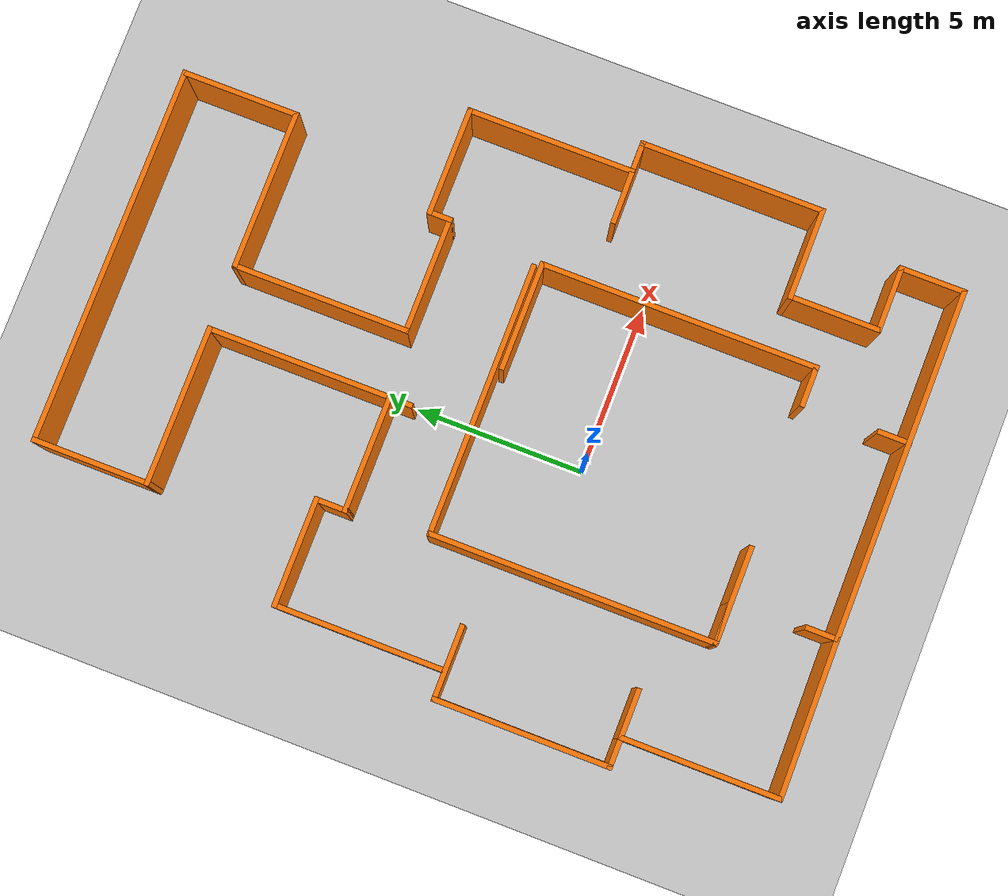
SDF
<sdf version="1.7">
 <world name="default">
  <light name="sun" type="directional">
   <pose>0 0 10 0 -0 0</pose>
   <diffuse>0.8 0.8 0.8 1</diffuse>
   <specular>0.2 0.2 0.2 1</specular>
   <attenuation>
    <range>1000</range>
    <constant>0.9</constant>
    <linear>0.01</linear>
    <quadratic>0.001</quadratic>
   </attenuation>
   <direction>-0.5 0.1 -0.9</direction>
   <spot><inner_angle>0</inner_angle><outer_angle>0</outer_angle><falloff>0</falloff></spot>
  </light>
  <model name="ground_plane">
   <static>1</static>
   <link name="link">
    <collision name="collision">
     <geometry><plane><normal>0 0 1</normal><size>100 100</size></plane></geometry>
     <surface>
      <contact><collide_bitmask>65535</collide_bitmask></contact>
      <friction><ode><mu>100</mu><mu2>50</mu2></ode></friction>
     </surface>
    </collision>
    <visual name="visual">
     <cast_shadows>0</cast_shadows>
     <geometry><plane><normal>0 0 1</normal><size>100 100</size></plane></geometry>
     <material>
      <script><uri>file://media/materials/scripts/gazebo.material</uri><name>Gazebo/Grey</name></script>
     </material>
    </visual>
   </link>
  </model>
  <gravity>0 0 -9.8</gravity>
  <magnetic_field>6e-06 2.3e-05 -4.2e-05</magnetic_field>
  <atmosphere type="adiabatic"/>
  <physics type="ode">
   <max_step_size>0.001</max_step_size>
   <real_time_factor>1</real_time_factor>
   <real_time_update_rate>1000</real_time_update_rate>
  </physics>
  <scene><ambient>0.4 0.4 0.4 1</ambient><background>0.7 0.7 0.7 1</background><shadows>1</shadows></scene>
  <spherical_coordinates>
   <surface_model>EARTH_WGS84</surface_model>
   <latitude_deg>0</latitude_deg>
   <longitude_deg>0</longitude_deg>
   <elevation>0</elevation>
   <heading_deg>0</heading_deg>
  </spherical_coordinates>
  <model name="Museum">
   <pose>0.74736 3.09404 0 0 -0 0</pose>
   <link name="Wall_0">
    <collision name="Wall_0_Collision">
     <geometry><box><size>4.74291 0.15 2.5</size></box></geometry>
     <pose>0 0 1.25 0 -0 0</pose>
    </collision>
    <visual name="Wall_0_Visual">
     <pose>0 0 1.25 0 -0 0</pose>
     <geometry><box><size>4.74291 0.15 2.5</size></box></geometry>
     <material>
      <script><uri>file://media/materials/scripts/gazebo.material</uri><name>Gazebo/Grey</name></script>
      <ambient>0.996078 0.47451 0.0196078 1</ambient>
     </material>
     <meta><layer>0</layer></meta>
    </visual>
    <pose>-5.09023 -11.2453 0 0 -0 0.008808</pose>
   </link>
   <link name="Wall_1">
    <collision name="Wall_1_Collision">
     <geometry><box><size>1 0.15 2.5</size></box></geometry>
     <pose>0 0 1.25 0 -0 0</pose>
    </collision>
    <visual name="Wall_1_Visual">
     <pose>0 0 1.25 0 -0 0</pose>
     <geometry><box><size>1 0.15 2.5</size></box></geometry>
     <material>
      <script><uri>file://media/materials/scripts/gazebo.material</uri><name>Gazebo/Grey</name></script>
      <ambient>0.996078 0.47451 0.0196078 1</ambient>
     </material>
     <meta><layer>0</layer></meta>
    </visual>
    <pose>-2.79386 -10.8 0 0 -0 1.5708</pose>
   </link>
   <link name="Wall_10">
    <collision name="Wall_10_Collision">
     <geometry><box><size>5 0.15 2.5</size></box></geometry>
     <pose>0 0 1.25 0 -0 0</pose>
    </collision>
    <visual name="Wall_10_Visual">
     <pose>0 0 1.25 0 -0 0</pose>
     <geometry><box><size>5 0.15 2.5</size></box></geometry>
     <material>
      <script><uri>file://media/materials/scripts/gazebo.material</uri><name>Gazebo/Grey</name></script>
      <ambient>0.996078 0.47451 0.0196078 1</ambient>
     </material>
     <meta><layer>0</layer></meta>
    </visual>
    <pose>-7.41414 0.991141 0 0 -0 1.5708</pose>
   </link>
   <link name="Wall_11">
    <collision name="Wall_11_Collision">
     <geometry><box><size>3.25 0.15 2.5</size></box></geometry>
     <pose>0 0 1.25 0 -0 0</pose>
    </collision>
    <visual name="Wall_11_Visual">
     <pose>0 0 1.25 0 -0 0</pose>
     <geometry><box><size>3.25 0.15 2.5</size></box></geometry>
     <material>
      <script><uri>file://media/materials/scripts/gazebo.material</uri><name>Gazebo/Grey</name></script>
      <ambient>0.996078 0.47451 0.0196078 1</ambient>
     </material>
     <meta><layer>0</layer></meta>
    </visual>
    <pose>-5.86414 3.41614 0 0 -0 0</pose>
   </link>
   <link name="Wall_12">
    <collision name="Wall_12_Collision">
     <geometry><box><size>1 0.15 2.5</size></box></geometry>
     <pose>0 0 1.25 0 -0 0</pose>
    </collision>
    <visual name="Wall_12_Visual">
     <pose>0 0 1.25 0 -0 0</pose>
     <geometry><box><size>1 0.15 2.5</size></box></geometry>
     <material>
      <script><uri>file://media/materials/scripts/gazebo.material</uri><name>Gazebo/Grey</name></script>
      <ambient>0.996078 0.47451 0.0196078 1</ambient>
     </material>
     <meta><layer>0</layer></meta>
    </visual>
    <pose>-4.31414 2.99114 0 0 -0 -1.5708</pose>
   </link>
   <link name="Wall_13">
    <collision name="Wall_13_Collision">
     <geometry><box><size>3.5 0.15 2.5</size></box></geometry>
     <pose>0 0 1.25 0 -0 0</pose>
    </collision>
    <visual name="Wall_13_Visual">
     <pose>0 0 1.25 0 -0 0</pose>
     <geometry><box><size>3.5 0.15 2.5</size></box></geometry>
     <material>
      <script><uri>file://media/materials/scripts/gazebo.material</uri><name>Gazebo/Grey</name></script>
      <ambient>0.996078 0.47451 0.0196078 1</ambient>
     </material>
     <meta><layer>0</layer></meta>
    </visual>
    <pose>-2.63914 2.56614 0 0 -0 0</pose>
   </link>
   <link name="Wall_14">
    <collision name="Wall_14_Collision">
     <geometry><box><size>0.75 0.15 2.5</size></box></geometry>
     <pose>0 0 1.25 0 -0 0</pose>
    </collision>
    <visual name="Wall_14_Visual">
     <pose>0 0 1.25 0 -0 0</pose>
     <geometry><box><size>0.75 0.15 2.5</size></box></geometry>
     <material>
      <script><uri>file://media/materials/scripts/gazebo.material</uri><name>Gazebo/Grey</name></script>
      <ambient>0.996078 0.47451 0.0196078 1</ambient>
     </material>
     <meta><layer>0</layer></meta>
    </visual>
    <pose>-0.964138 2.26614 0 0 -0 -1.5708</pose>
   </link>
   <link name="Wall_17">
    <collision name="Wall_17_Collision">
     <geometry><box><size>1.25 0.15 2.5</size></box></geometry>
     <pose>0 0 1.25 0 -0 0</pose>
    </collision>
    <visual name="Wall_17_Visual">
     <pose>0 0 1.25 0 -0 0</pose>
     <geometry><box><size>1.25 0.15 2.5</size></box></geometry>
     <material>
      <script><uri>file://media/materials/scripts/gazebo.material</uri><name>Gazebo/Grey</name></script>
      <ambient>0.996078 0.47451 0.0196078 1</ambient>
     </material>
     <meta><layer>0</layer></meta>
    </visual>
    <pose>-3.53014 -8.18025 0 0 -0 3.14159</pose>
   </link>
   <link name="Wall_18">
    <collision name="Wall_18_Collision">
     <geometry><box><size>8.5 0.15 2.5</size></box></geometry>
     <pose>0 0 1.25 0 -0 0</pose>
    </collision>
    <visual name="Wall_18_Visual">
     <pose>0 0 1.25 0 -0 0</pose>
     <geometry><box><size>8.5 0.15 2.5</size></box></geometry>
     <material>
      <script><uri>file://media/materials/scripts/gazebo.material</uri><name>Gazebo/Grey</name></script>
      <ambient>0.996078 0.47451 0.0196078 1</ambient>
     </material>
     <meta><layer>0</layer></meta>
    </visual>
    <pose>-4.08014 -4.00525 0 0 -0 1.5708</pose>
   </link>
   <link name="Wall_19">
    <collision name="Wall_19_Collision">
     <geometry><box><size>3.25 0.15 2.5</size></box></geometry>
     <pose>0 0 1.25 0 -0 0</pose>
    </collision>
    <visual name="Wall_19_Visual">
     <pose>0 0 1.25 0 -0 0</pose>
     <geometry><box><size>3.25 0.15 2.5</size></box></geometry>
     <material>
      <script><uri>file://media/materials/scripts/gazebo.material</uri><name>Gazebo/Grey</name></script>
      <ambient>0.996078 0.47451 0.0196078 1</ambient>
     </material>
     <meta><layer>0</layer></meta>
    </visual>
    <pose>-2.53014 0.169748 0 0 -0 0</pose>
   </link>
   <link name="Wall_21">
    <collision name="Wall_21_Collision">
     <geometry><box><size>5.5 0.15 2.5</size></box></geometry>
     <pose>0 0 1.25 0 -0 0</pose>
    </collision>
    <visual name="Wall_21_Visual">
     <pose>0 0 1.25 0 -0 0</pose>
     <geometry><box><size>5.5 0.15 2.5</size></box></geometry>
     <material>
      <script><uri>file://media/materials/scripts/gazebo.material</uri><name>Gazebo/Grey</name></script>
      <ambient>0.996078 0.47451 0.0196078 1</ambient>
     </material>
     <meta><layer>0</layer></meta>
    </visual>
    <pose>-0.964138 5.24114 0 0 -0 1.5708</pose>
   </link>
   <link name="Wall_22">
    <collision name="Wall_22_Collision">
     <geometry><box><size>4.75 0.15 2.5</size></box></geometry>
     <pose>0 0 1.25 0 -0 0</pose>
    </collision>
    <visual name="Wall_22_Visual">
     <pose>0 0 1.25 0 -0 0</pose>
     <geometry><box><size>4.75 0.15 2.5</size></box></geometry>
     <material>
      <script><uri>file://media/materials/scripts/gazebo.material</uri><name>Gazebo/Grey</name></script>
      <ambient>0.996078 0.47451 0.0196078 1</ambient>
     </material>
     <meta><layer>0</layer></meta>
    </visual>
    <pose>-3.26414 7.91614 0 0 -0 3.14159</pose>
   </link>
   <link name="Wall_23">
    <collision name="Wall_23_Collision">
     <geometry><box><size>3.5 0.15 2.5</size></box></geometry>
     <pose>0 0 1.25 0 -0 0</pose>
    </collision>
    <visual name="Wall_23_Visual">
     <pose>0 0 1.25 0 -0 0</pose>
     <geometry><box><size>3.5 0.15 2.5</size></box></geometry>
     <material>
      <script><uri>file://media/materials/scripts/gazebo.material</uri><name>Gazebo/Grey</name></script>
      <ambient>0.996078 0.47451 0.0196078 1</ambient>
     </material>
     <meta><layer>0</layer></meta>
    </visual>
    <pose>-5.56414 9.59114 0 0 -0 1.5708</pose>
   </link>
   <link name="Wall_24">
    <collision name="Wall_24_Collision">
     <geometry><box><size>11.25 0.15 2.5</size></box></geometry>
     <pose>0 0 1.25 0 -0 0</pose>
    </collision>
    <visual name="Wall_24_Visual">
     <pose>0 0 1.25 0 -0 0</pose>
     <geometry><box><size>11.25 0.15 2.5</size></box></geometry>
     <material>
      <script><uri>file://media/materials/scripts/gazebo.material</uri><name>Gazebo/Grey</name></script>
      <ambient>0.996078 0.47451 0.0196078 1</ambient>
     </material>
     <meta><layer>0</layer></meta>
    </visual>
    <pose>-0.014138 11.2661 0 0 -0 0</pose>
   </link>
   <link name="Wall_25">
    <collision name="Wall_25_Collision">
     <geometry><box><size>3.5 0.15 2.5</size></box></geometry>
     <pose>0 0 1.25 0 -0 0</pose>
    </collision>
    <visual name="Wall_25_Visual">
     <pose>0 0 1.25 0 -0 0</pose>
     <geometry><box><size>3.5 0.15 2.5</size></box></geometry>
     <material>
      <script><uri>file://media/materials/scripts/gazebo.material</uri><name>Gazebo/Grey</name></script>
      <ambient>0.996078 0.47451 0.0196078 1</ambient>
     </material>
     <meta><layer>0</layer></meta>
    </visual>
    <pose>5.53586 9.59114 0 0 -0 -1.5708</pose>
   </link>
   <link name="Wall_26">
    <collision name="Wall_26_Collision">
     <geometry><box><size>4.75 0.15 2.5</size></box></geometry>
     <pose>0 0 1.25 0 -0 0</pose>
    </collision>
    <visual name="Wall_26_Visual">
     <pose>0 0 1.25 0 -0 0</pose>
     <geometry><box><size>4.75 0.15 2.5</size></box></geometry>
     <material>
      <script><uri>file://media/materials/scripts/gazebo.material</uri><name>Gazebo/Grey</name></script>
      <ambient>0.996078 0.47451 0.0196078 1</ambient>
     </material>
     <meta><layer>0</layer></meta>
    </visual>
    <pose>3.23586 7.91614 0 0 -0 3.14159</pose>
   </link>
   <link name="Wall_27">
    <collision name="Wall_27_Collision">
     <geometry><box><size>5.25 0.15 2.5</size></box></geometry>
     <pose>0 0 1.25 0 -0 0</pose>
    </collision>
    <visual name="Wall_27_Visual">
     <pose>0 0 1.25 0 -0 0</pose>
     <geometry><box><size>5.25 0.15 2.5</size></box></geometry>
     <material>
      <script><uri>file://media/materials/scripts/gazebo.material</uri><name>Gazebo/Grey</name></script>
      <ambient>0.996078 0.47451 0.0196078 1</ambient>
     </material>
     <meta><layer>0</layer></meta>
    </visual>
    <pose>0.935862 5.36614 0 0 -0 -1.5708</pose>
   </link>
   <link name="Wall_28">
    <collision name="Wall_28_Collision">
     <geometry><box><size>3.5 0.15 2.5</size></box></geometry>
     <pose>0 0 1.25 0 -0 0</pose>
    </collision>
    <visual name="Wall_28_Visual">
     <pose>0 0 1.25 0 -0 0</pose>
     <geometry><box><size>3.5 0.15 2.5</size></box></geometry>
     <material>
      <script><uri>file://media/materials/scripts/gazebo.material</uri><name>Gazebo/Grey</name></script>
      <ambient>0.996078 0.47451 0.0196078 1</ambient>
     </material>
     <meta><layer>0</layer></meta>
    </visual>
    <pose>2.61086 2.81614 0 0 -0 0</pose>
   </link>
   <link name="Wall_29">
    <collision name="Wall_29_Collision">
     <geometry><box><size>0.75 0.15 2.5</size></box></geometry>
     <pose>0 0 1.25 0 -0 0</pose>
    </collision>
    <visual name="Wall_29_Visual">
     <pose>0 0 1.25 0 -0 0</pose>
     <geometry><box><size>0.75 0.15 2.5</size></box></geometry>
     <material>
      <script><uri>file://media/materials/scripts/gazebo.material</uri><name>Gazebo/Grey</name></script>
      <ambient>0.996078 0.47451 0.0196078 1</ambient>
     </material>
     <meta><layer>0</layer></meta>
    </visual>
    <pose>4.28586 3.11614 0 0 -0 1.5708</pose>
   </link>
   <link name="Wall_3">
    <collision name="Wall_3_Collision">
     <geometry><box><size>4.75 0.15 2.5</size></box></geometry>
     <pose>0 0 1.25 0 -0 0</pose>
    </collision>
    <visual name="Wall_3_Visual">
     <pose>0 0 1.25 0 -0 0</pose>
     <geometry><box><size>4.75 0.15 2.5</size></box></geometry>
     <material>
      <script><uri>file://media/materials/scripts/gazebo.material</uri><name>Gazebo/Grey</name></script>
      <ambient>0.996078 0.47451 0.0196078 1</ambient>
     </material>
     <meta><layer>0</layer></meta>
    </visual>
    <pose>-7.3866 -8.96548 0 0 -0 1.5708</pose>
   </link>
   <link name="Wall_30">
    <collision name="Wall_30_Collision">
     <geometry><box><size>3.25 0.15 2.5</size></box></geometry>
     <pose>0 0 1.25 0 -0 0</pose>
    </collision>
    <visual name="Wall_30_Visual">
     <pose>0 0 1.25 0 -0 0</pose>
     <geometry><box><size>3.25 0.15 2.5</size></box></geometry>
     <material>
      <script><uri>file://media/materials/scripts/gazebo.material</uri><name>Gazebo/Grey</name></script>
      <ambient>0.996078 0.47451 0.0196078 1</ambient>
     </material>
     <meta><layer>0</layer></meta>
    </visual>
    <pose>5.83586 3.41614 0 0 -0 0</pose>
   </link>
   <link name="Wall_31">
    <collision name="Wall_31_Collision">
     <geometry><box><size>5 0.15 2.5</size></box></geometry>
     <pose>0 0 1.25 0 -0 0</pose>
    </collision>
    <visual name="Wall_31_Visual">
     <pose>0 0 1.25 0 -0 0</pose>
     <geometry><box><size>5 0.15 2.5</size></box></geometry>
     <material>
      <script><uri>file://media/materials/scripts/gazebo.material</uri><name>Gazebo/Grey</name></script>
      <ambient>0.996078 0.47451 0.0196078 1</ambient>
     </material>
     <meta><layer>0</layer></meta>
    </visual>
    <pose>7.38586 0.991141 0 0 -0 -1.5708</pose>
   </link>
   <link name="Wall_32">
    <collision name="Wall_32_Collision">
     <geometry><box><size>1 0.15 2.5</size></box></geometry>
     <pose>0 0 1.25 0 -0 0</pose>
    </collision>
    <visual name="Wall_32_Visual">
     <pose>0 0 1.25 0 -0 0</pose>
     <geometry><box><size>1 0.15 2.5</size></box></geometry>
     <material>
      <script><uri>file://media/materials/scripts/gazebo.material</uri><name>Gazebo/Grey</name></script>
      <ambient>1 1 1 1</ambient>
     </material>
     <meta><layer>0</layer></meta>
    </visual>
    <pose>7.81086 -1.43386 0 0 -0 0</pose>
   </link>
   <link name="Wall_33">
    <collision name="Wall_33_Collision">
     <geometry><box><size>5.5 0.15 2.5</size></box></geometry>
     <pose>0 0 1.25 0 -0 0</pose>
    </collision>
    <visual name="Wall_33_Visual">
     <pose>0 0 1.25 0 -0 0</pose>
     <geometry><box><size>5.5 0.15 2.5</size></box></geometry>
     <material>
      <script><uri>file://media/materials/scripts/gazebo.material</uri><name>Gazebo/Grey</name></script>
      <ambient>0.996078 0.47451 0.0196078 1</ambient>
     </material>
     <meta><layer>0</layer></meta>
    </visual>
    <pose>8.23586 -4.10886 0 0 -0 -1.5708</pose>
   </link>
   <link name="Wall_34">
    <collision name="Wall_34_Collision">
     <geometry><box><size>2.75 0.15 2.5</size></box></geometry>
     <pose>0 0 1.25 0 -0 0</pose>
    </collision>
    <visual name="Wall_34_Visual">
     <pose>0 0 1.25 0 -0 0</pose>
     <geometry><box><size>2.75 0.15 2.5</size></box></geometry>
     <material>
      <script><uri>file://media/materials/scripts/gazebo.material</uri><name>Gazebo/Grey</name></script>
      <ambient>0.996078 0.47451 0.0196078 1</ambient>
     </material>
     <meta><layer>0</layer></meta>
    </visual>
    <pose>6.93586 -6.78386 0 0 -0 3.14159</pose>
   </link>
   <link name="Wall_36">
    <collision name="Wall_36_Collision">
     <geometry><box><size>2.75 0.15 2.5</size></box></geometry>
     <pose>0 0 1.25 0 -0 0</pose>
    </collision>
    <visual name="Wall_36_Visual">
     <pose>0 0 1.25 0 -0 0</pose>
     <geometry><box><size>2.75 0.15 2.5</size></box></geometry>
     <material>
      <script><uri>file://media/materials/scripts/gazebo.material</uri><name>Gazebo/Grey</name></script>
      <ambient>0.996078 0.47451 0.0196078 1</ambient>
     </material>
     <meta><layer>0</layer></meta>
    </visual>
    <pose>5.63586 -8.08386 0 0 -0 -1.5708</pose>
   </link>
   <link name="Wall_37">
    <collision name="Wall_37_Collision">
     <geometry><box><size>2 0.15 2.5</size></box></geometry>
     <pose>0 0 1.25 0 -0 0</pose>
    </collision>
    <visual name="Wall_37_Visual">
     <pose>0 0 1.25 0 -0 0</pose>
     <geometry><box><size>2 0.15 2.5</size></box></geometry>
     <material>
      <script><uri>file://media/materials/scripts/gazebo.material</uri><name>Gazebo/Grey</name></script>
      <ambient>0.996078 0.47451 0.0196078 1</ambient>
     </material>
     <meta><layer>0</layer></meta>
    </visual>
    <pose>6.56086 -9.38386 0 0 -0 0</pose>
   </link>
   <link name="Wall_38">
    <collision name="Wall_38_Collision">
     <geometry><box><size>2 0.15 2.5</size></box></geometry>
     <pose>0 0 1.25 0 -0 0</pose>
    </collision>
    <visual name="Wall_38_Visual">
     <pose>0 0 1.25 0 -0 0</pose>
     <geometry><box><size>2 0.15 2.5</size></box></geometry>
     <material>
      <script><uri>file://media/materials/scripts/gazebo.material</uri><name>Gazebo/Grey</name></script>
      <ambient>0.996078 0.47451 0.0196078 1</ambient>
     </material>
     <meta><layer>0</layer></meta>
    </visual>
    <pose>7.48586 -10.3089 0 0 -0 -1.5708</pose>
   </link>
   <link name="Wall_39">
    <collision name="Wall_39_Collision">
     <geometry><box><size>10.4297 0.15 2.5</size></box></geometry>
     <pose>0 0 1.25 0 -0 0</pose>
    </collision>
    <visual name="Wall_39_Visual">
     <pose>0 0 1.25 0 -0 0</pose>
     <geometry><box><size>10.4297 0.15 2.5</size></box></geometry>
     <material>
      <script><uri>file://media/materials/scripts/gazebo.material</uri><name>Gazebo/Grey</name></script>
      <ambient>0.996078 0.47451 0.0196078 1</ambient>
     </material>
     <meta><layer>0</layer></meta>
    </visual>
    <pose>2.346 -11.2294 0 0 -0 3.14073</pose>
   </link>
   <link name="Wall_4">
    <collision name="Wall_4_Collision">
     <geometry><box><size>1.5 0.15 2.5</size></box></geometry>
     <pose>0 0 1.25 0 -0 0</pose>
    </collision>
    <visual name="Wall_4_Visual">
     <pose>0 0 1.25 0 -0 0</pose>
     <geometry><box><size>1.5 0.15 2.5</size></box></geometry>
     <material>
      <script><uri>file://media/materials/scripts/gazebo.material</uri><name>Gazebo/Grey</name></script>
      <ambient>0.996078 0.47451 0.0196078 1</ambient>
     </material>
     <meta><layer>0</layer></meta>
    </visual>
    <pose>-6.7116 -6.66548 0 0 -0 0</pose>
   </link>
   <link name="Wall_41">
    <collision name="Wall_41_Collision">
     <geometry><box><size>1 0.15 2.5</size></box></geometry>
     <pose>0 0 1.25 0 -0 0</pose>
    </collision>
    <visual name="Wall_41_Visual">
     <pose>0 0 1.25 0 -0 0</pose>
     <geometry><box><size>1 0.15 2.5</size></box></geometry>
     <material>
      <script><uri>file://media/materials/scripts/gazebo.material</uri><name>Gazebo/Grey</name></script>
      <ambient>0.996078 0.47451 0.0196078 1</ambient>
     </material>
     <meta><layer>0</layer></meta>
    </visual>
    <pose>2.96871 -10.8114 0 0 -0 -1.5708</pose>
   </link>
   <link name="Wall_43">
    <collision name="Wall_43_Collision">
     <geometry><box><size>1.25 0.15 2.5</size></box></geometry>
     <pose>0 0 1.25 0 -0 0</pose>
    </collision>
    <visual name="Wall_43_Visual">
     <pose>0 0 1.25 0 -0 0</pose>
     <geometry><box><size>1.25 0.15 2.5</size></box></geometry>
     <material>
      <script><uri>file://media/materials/scripts/gazebo.material</uri><name>Gazebo/Grey</name></script>
      <ambient>0.996078 0.47451 0.0196078 1</ambient>
     </material>
     <meta><layer>0</layer></meta>
    </visual>
    <pose>3.47826 -8.13229 0 0 -0 0</pose>
   </link>
   <link name="Wall_44">
    <collision name="Wall_44_Collision">
     <geometry><box><size>8.25 0.15 2.5</size></box></geometry>
     <pose>0 0 1.25 0 -0 0</pose>
    </collision>
    <visual name="Wall_44_Visual">
     <pose>0 0 1.25 0 -0 0</pose>
     <geometry><box><size>8.25 0.15 2.5</size></box></geometry>
     <material>
      <script><uri>file://media/materials/scripts/gazebo.material</uri><name>Gazebo/Grey</name></script>
      <ambient>0.996078 0.47451 0.0196078 1</ambient>
     </material>
     <meta><layer>0</layer></meta>
    </visual>
    <pose>4.02826 -4.08229 0 0 -0 1.5708</pose>
   </link>
   <link name="Wall_45">
    <collision name="Wall_45_Collision">
     <geometry><box><size>3.25 0.15 2.5</size></box></geometry>
     <pose>0 0 1.25 0 -0 0</pose>
    </collision>
    <visual name="Wall_45_Visual">
     <pose>0 0 1.25 0 -0 0</pose>
     <geometry><box><size>3.25 0.15 2.5</size></box></geometry>
     <material>
      <script><uri>file://media/materials/scripts/gazebo.material</uri><name>Gazebo/Grey</name></script>
      <ambient>0.996078 0.47451 0.0196078 1</ambient>
     </material>
     <meta><layer>0</layer></meta>
    </visual>
    <pose>2.47826 -0.03229 0 0 -0 3.14159</pose>
   </link>
   <link name="Wall_48">
    <collision name="Wall_48_Collision">
     <geometry><box><size>2.50446 0.15 2.5</size></box></geometry>
     <pose>0 0 1.25 0 -0 0</pose>
    </collision>
    <visual name="Wall_48_Visual">
     <pose>0 0 1.25 0 -0 0</pose>
     <geometry><box><size>2.50446 0.15 2.5</size></box></geometry>
     <material>
      <script><uri>file://media/materials/scripts/gazebo.material</uri><name>Gazebo/Grey</name></script>
      <ambient>0.996078 0.47451 0.0196078 1</ambient>
     </material>
     <meta><layer>0</layer></meta>
    </visual>
    <pose>7.05869 -1.44549 0 0 -0 0.00988</pose>
   </link>
   <link name="Wall_52">
    <collision name="Wall_52_Collision">
     <geometry><box><size>2.92481 0.15 2.5</size></box></geometry>
     <pose>0 0 1.25 0 -0 0</pose>
    </collision>
    <visual name="Wall_52_Visual">
     <pose>0 0 1.25 0 -0 0</pose>
     <geometry><box><size>2.92481 0.15 2.5</size></box></geometry>
     <material>
      <script><uri>file://media/materials/scripts/gazebo.material</uri><name>Gazebo/Grey</name></script>
      <ambient>0.996078 0.47451 0.0196078 1</ambient>
     </material>
     <meta><layer>0</layer></meta>
    </visual>
    <pose>-2.69274 -8.18071 0 0 -0 3.14127</pose>
   </link>
   <link name="Wall_6">
    <collision name="Wall_6_Collision">
     <geometry><box><size>1 0.15 2.5</size></box></geometry>
     <pose>0 0 1.25 0 -0 0</pose>
    </collision>
    <visual name="Wall_6_Visual">
     <pose>0 0 1.25 0 -0 0</pose>
     <geometry><box><size>1 0.15 2.5</size></box></geometry>
     <material>
      <script><uri>file://media/materials/scripts/gazebo.material</uri><name>Gazebo/Grey</name></script>
      <ambient>0.996078 0.47451 0.0196078 1</ambient>
     </material>
     <meta><layer>0</layer></meta>
    </visual>
    <pose>-7.8116 -6.66548 0 0 -0 3.14159</pose>
   </link>
   <link name="Wall_60">
    <collision name="Wall_60_Collision">
     <geometry><box><size>5 0.15 2.5</size></box></geometry>
     <pose>0 0 1.25 0 -0 0</pose>
    </collision>
    <visual name="Wall_60_Visual">
     <pose>0 0 1.25 0 -0 0</pose>
     <geometry><box><size>5 0.15 2.5</size></box></geometry>
     <material>
      <script><uri>file://media/materials/scripts/gazebo.material</uri><name>Gazebo/Grey</name></script>
      <ambient>0.996078 0.47451 0.0196078 1</ambient>
     </material>
     <meta><layer>0</layer></meta>
    </visual>
    <pose>1.44486 0.169748 0 0 -0 0</pose>
   </link>
   <link name="Wall_7">
    <collision name="Wall_7_Collision">
     <geometry><box><size>5.25 0.15 2.5</size></box></geometry>
     <pose>0 0 1.25 0 -0 0</pose>
    </collision>
    <visual name="Wall_7_Visual">
     <pose>0 0 1.25 0 -0 0</pose>
     <geometry><box><size>5.25 0.15 2.5</size></box></geometry>
     <material>
      <script><uri>file://media/materials/scripts/gazebo.material</uri><name>Gazebo/Grey</name></script>
      <ambient>0.996078 0.47451 0.0196078 1</ambient>
     </material>
     <meta><layer>0</layer></meta>
    </visual>
    <pose>-8.2366 -4.11548 0 0 -0 1.5708</pose>
   </link>
   <link name="Wall_8">
    <collision name="Wall_8_Collision">
     <geometry><box><size>2.25 0.15 2.5</size></box></geometry>
     <pose>0 0 1.25 0 -0 0</pose>
    </collision>
    <visual name="Wall_8_Visual">
     <pose>0 0 1.25 0 -0 0</pose>
     <geometry><box><size>2.25 0.15 2.5</size></box></geometry>
     <material>
      <script><uri>file://media/materials/scripts/gazebo.material</uri><name>Gazebo/Grey</name></script>
      <ambient>0.996078 0.47451 0.0196078 1</ambient>
     </material>
     <meta><layer>0</layer></meta>
    </visual>
    <pose>-7.1866 -1.56548 0 0 -0 0</pose>
   </link>
   <static>1</static>
  </model>
 </world>
</sdf>
